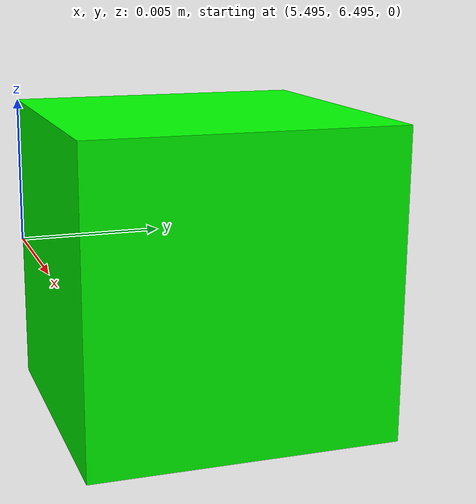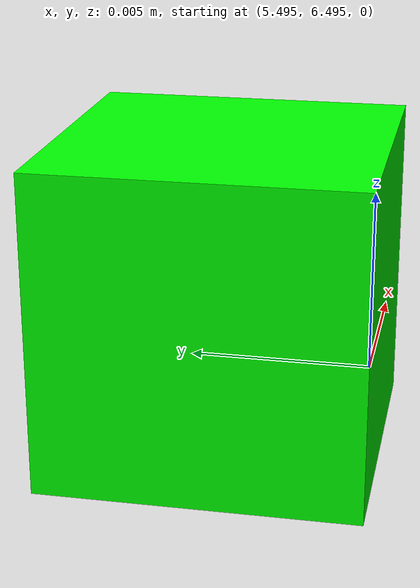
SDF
<?xml version="1.0" ?>
<sdf version="1.4">
  <model name="source_9">
    <pose>5.5 6.5 0 0 0 0</pose>
    <static>true</static>
    <link name="link">
      <collision name="collision">
        <geometry>
          <box>
            <size>0.01 0.01 0.01</size>
          </box>
        </geometry>
      </collision>
      <visual name="visual">
        <geometry>
          <box>
            <size>0.01 0.01 0.01</size>
          </box>
        </geometry>
        <material>
          <ambient>0 1 0 1</ambient>
          <diffuse>0 1 0 1</diffuse>
        </material>
      </visual>
      <sensor name="radiation_source_9" type="radiation_source">
        <always_on> 1 </always_on>
        <update_rate> 1.0 </update_rate>
        <topic>souce_9/gamma</topic>
        <plugin filename="libradiation_source_plugin.so" name="radiation_source_plugin" />
      </sensor>
    </link>
  </model>
</sdf>
